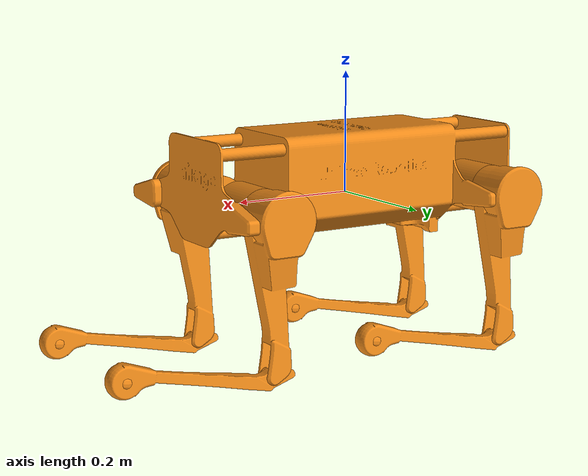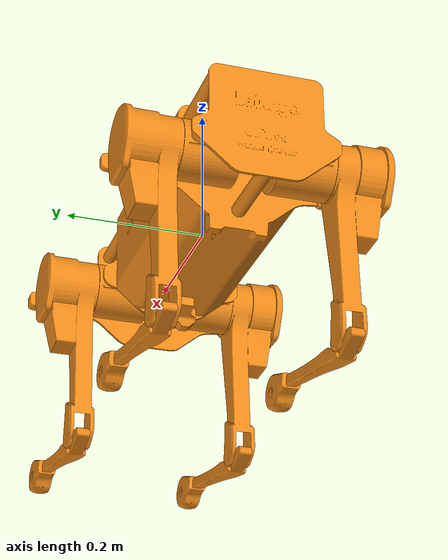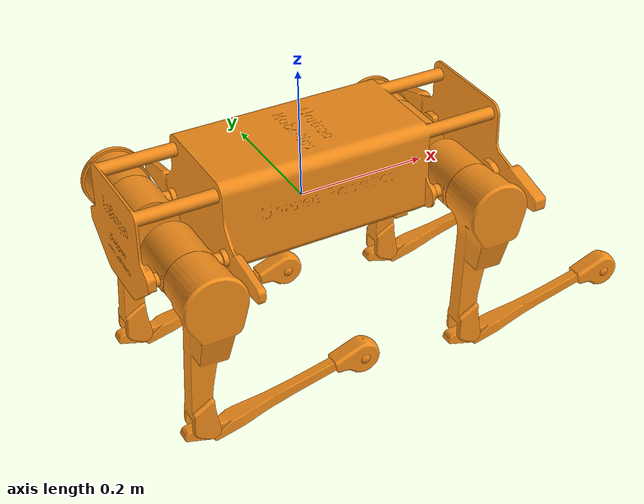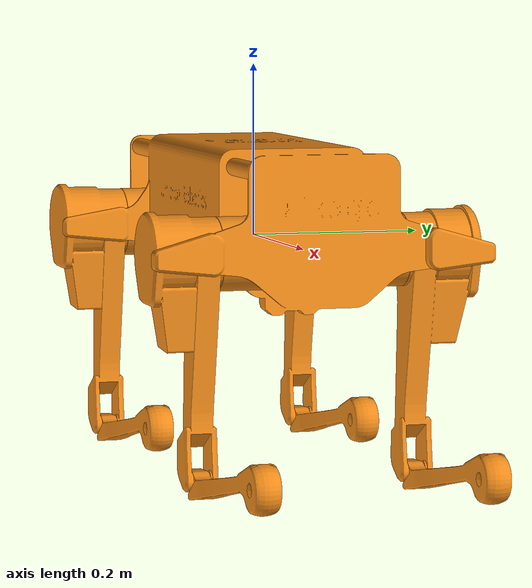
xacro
<?xml version="1.0"?>

<robot name="laikago" xmlns:xacro="http://www.ros.org/wiki/xacro">

    <xacro:arg name="DEBUG" default="false"/>

    <xacro:include filename="$(find laikago_description)/xacro/const.xacro"/>
    <xacro:include filename="$(find laikago_description)/xacro/materials.xacro"/>
    <xacro:include filename="$(find laikago_description)/xacro/leg.xacro"/>
    <xacro:include filename="$(find laikago_description)/xacro/gazebo.xacro"/>

    <!-- Rollover Protection mode will add an additional stick on the top, use "true" or "false" to switch it. -->
    <xacro:property name="rolloverProtection" value="false"/>

    <!-- Debug mode will hung up the robot, use "true" or "false" to switch it. -->
    <xacro:if value="$(arg DEBUG)">
        <link name="world"/>
        <joint name="base_static_joint" type="fixed">
            <origin rpy="0 0 0" xyz="0 0 0"/>
            <parent link="world"/>
            <child link="base"/>
        </joint>
    </xacro:if>

    <link name="base">
        <visual>
            <origin rpy="0 0 0" xyz="0 0 0"/>
            <geometry>
                <box size="0.001 0.001 0.001"/>
            </geometry>
        </visual>
    </link>

    <joint name="floating_base" type="fixed">
        <origin rpy="0 0 0" xyz="0 0 0"/>
        <parent link="base"/>
        <child link="trunk"/>
    </joint>

    <link name="trunk">
        <visual>
            <origin rpy="0 0 0" xyz="0 0 0"/>
            <geometry>
                <mesh filename="package://laikago_description/meshes/trunk.dae" scale="1 1 1"/>
            </geometry>
            <material name="orange"/>
        </visual>
        <collision>
            <origin rpy="0 0 0" xyz="0 0 ${trunk_offset_z}"/>
            <geometry>
                <box size="${trunk_length} ${trunk_width} ${trunk_height}"/>
            </geometry>
        </collision>
        <inertial>
            <origin rpy="0 0 0" xyz="${trunk_com_x} ${trunk_com_y} ${trunk_com_z}"/>
            <mass value="${trunk_mass}"/>
            <inertia
                ixx="${trunk_ixx}" ixy="${trunk_ixy}" ixz="${trunk_ixz}"
                iyy="${trunk_iyy}" iyz="${trunk_iyz}"
                izz="${trunk_izz}"/>
        </inertial>
    </link>

    <xacro:if value="${(rolloverProtection == 'true')}">
        <joint name="stick_joint" type="fixed">
            <parent link="trunk"/>
            <child link="stick_link"/>
            <origin rpy="0 0 0" xyz="${0.18} 0 ${stick_length/2.0+0.08}"/>
        </joint>

        <link name="stick_link">
            <visual>
                <geometry>
                    <cylinder length="${stick_length}" radius="${stick_radius}"/>
                </geometry>
                <origin rpy="0 0 0" xyz="0 0 0"/>
                <material name="white"/>
            </visual>
            <collision>
                <geometry>
                    <cylinder length="${stick_length}" radius="${stick_radius}"/>
                </geometry>
                <origin rpy="0 0 0" xyz="0 0 0"/>
            </collision>
            <inertial>
                <mass value="${stick_mass}"/>
                <inertia
                    ixx="${stick_mass / 2.0 * (stick_radius*stick_radius)}" ixy="0.0" ixz="0.0"
                    iyy="${stick_mass / 12.0 * (3*stick_radius*stick_radius + stick_length*stick_length)}" iyz="0.0"
                    izz="${stick_mass / 12.0 * (3*stick_radius*stick_radius + stick_length*stick_length)}"/>
            </inertial>
        </link>
    </xacro:if>

    <joint name="imu_joint" type="fixed">
        <parent link="trunk"/>
        <child link="imu_link"/>
        <origin rpy="0 0 0" xyz="0 0 0"/>
    </joint>

    <link name="imu_link">
        <inertial>
            <mass value="0.001"/>
            <origin rpy="0 0 0" xyz="0 0 0"/>
            <inertia ixx="0.0001" ixy="0" ixz="0" iyy="0.0001" iyz="0" izz="0.0001"/>
        </inertial>
        <visual>
            <origin rpy="0 0 0" xyz="0 0 0"/>
            <geometry>
                <box size="0.001 0.001 0.001"/>
            </geometry>
            <material name="red"/>
        </visual>
        <collision>
            <origin rpy="0 0 0" xyz="0 0 0"/>
            <geometry>
                <box size=".001 .001 .001"/>
            </geometry>
        </collision>
    </link>
    <xacro:leg name="FR" mirror="-1" mirror_dae="False" front_hind="1" front_hind_dae="True">
        <origin rpy="0 0 0" xyz="${leg_offset_x} ${-leg_offset_y} 0"/>
    </xacro:leg>

    <xacro:leg name="FL" mirror="1" mirror_dae="True" front_hind="1" front_hind_dae="True">
        <origin rpy="0 0 0" xyz="${leg_offset_x} ${leg_offset_y} 0"/>
    </xacro:leg>

    <xacro:leg name="RR" mirror="-1" mirror_dae="False" front_hind="-1" front_hind_dae="False">
        <origin rpy="0 0 0" xyz="${-leg_offset_x} ${-leg_offset_y} 0"/>
    </xacro:leg>

    <xacro:leg name="RL" mirror="1" mirror_dae="True" front_hind="-1" front_hind_dae="False">
        <origin rpy="0 0 0" xyz="${-leg_offset_x} ${leg_offset_y} 0"/>
    </xacro:leg>

</robot>

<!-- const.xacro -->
<robot xmlns:xacro="http://www.ros.org/wiki/xacro">

    <!-- Constants for robot dimensions -->
    <xacro:property name="PI" value="3.1415926535897931"/>
    <xacro:property name="stick_mass" value="0.00001"/>

    <!-- simplified collision value -->
    <xacro:property name="trunk_width" value="0.172"/>
    <xacro:property name="trunk_length" value="0.5616"/>
    <xacro:property name="trunk_height" value="0.1875"/>
    <xacro:property name="hip_radius" value="0.041"/>
    <xacro:property name="hip_length" value="0.08"/>
    <xacro:property name="thigh_shoulder_radius" value="0.044"/>
    <xacro:property name="thigh_shoulder_length" value="0.08"/>
    <xacro:property name="thigh_width" value="0.034"/>
    <xacro:property name="thigh_height" value="0.043"/>
    <xacro:property name="calf_width" value="0.016"/>
    <xacro:property name="calf_height" value="0.016"/>
    <xacro:property name="foot_radius" value="0.0265"/>
    <xacro:property name="stick_radius" value="0.01"/>
    <xacro:property name="stick_length" value="0.2"/>

    <!-- kinematic value -->
    <xacro:property name="thigh_offset" value="0.037"/>
    <xacro:property name="thigh_length" value="0.25"/>
    <xacro:property name="calf_length" value="0.25"/>

    <!-- leg offset from trunk center value -->
    <xacro:property name="leg_offset_x" value="0.21935"/>
    <xacro:property name="leg_offset_y" value="0.0875"/>
    <xacro:property name="trunk_offset_z" value="0.01675"/>
    <xacro:property name="hip_offset" value="0.019"/>

    <!-- joint limits -->
    <xacro:property name="damping" value="0"/>
    <xacro:property name="friction" value="0"/>
    <xacro:property name="hip_max" value="60"/>
    <xacro:property name="hip_min" value="-50"/>
    <xacro:property name="hip_velocity_max" value="27"/>
    <xacro:property name="hip_torque_max" value="18.954"/>
    <xacro:property name="thigh_max" value="225"/>
    <xacro:property name="thigh_min" value="-30"/>
    <xacro:property name="thigh_velocity_max" value="12.794"/>
    <xacro:property name="thigh_torque_max" value="40"/>
    <xacro:property name="calf_max" value="-35"/>
    <xacro:property name="calf_min" value="-159"/>
    <xacro:property name="calf_velocity_max" value="12.794"/>
    <xacro:property name="calf_torque_max" value="40"/>

    <!-- dynamics inertial value -->
    <!-- trunk -->
    <xacro:property name="trunk_mass" value="13.733"/>
    <xacro:property name="trunk_com_x" value="0.002284"/>
    <xacro:property name="trunk_com_y" value="-0.000041"/>
    <xacro:property name="trunk_com_z" value="0.025165"/>
    <xacro:property name="trunk_ixx" value="0.073348887"/>
    <xacro:property name="trunk_ixy" value="0.00030338"/>
    <xacro:property name="trunk_ixz" value="0.001918218"/>
    <xacro:property name="trunk_iyy" value="0.250684593"/>
    <xacro:property name="trunk_iyz" value="-0.000075402"/>
    <xacro:property name="trunk_izz" value="0.254469458"/>

    <!-- hip (left front) -->
    <xacro:property name="hip_mass" value="1.096"/>
    <xacro:property name="hip_com_x" value="-0.001568"/>
    <xacro:property name="hip_com_y" value="-0.008134"/>
    <xacro:property name="hip_com_z" value="0.000864"/>
    <xacro:property name="hip_ixx" value="0.000822113"/>
    <xacro:property name="hip_ixy" value="-0.000004982"/>
    <xacro:property name="hip_ixz" value="-0.00003672"/>
    <xacro:property name="hip_iyy" value="0.000983196"/>
    <xacro:property name="hip_iyz" value="0.000002811"/>
    <xacro:property name="hip_izz" value="0.000864753"/>

    <!-- thigh -->
    <xacro:property name="thigh_mass" value="1.528"/>
    <xacro:property name="thigh_com_x" value="-0.000482"/>
    <xacro:property name="thigh_com_y" value="0.02001"/>
    <xacro:property name="thigh_com_z" value="-0.031996"/>
    <xacro:property name="thigh_ixx" value="0.00991611"/>
    <xacro:property name="thigh_ixy" value="0.000010388"/>
    <xacro:property name="thigh_ixz" value="0.000250428"/>
    <xacro:property name="thigh_iyy" value="0.009280083"/>
    <xacro:property name="thigh_iyz" value="-0.00008511"/>
    <xacro:property name="thigh_izz" value="0.00178256"/>

    <!-- calf -->
    <xacro:property name="calf_mass" value="0.241"/>
    <xacro:property name="calf_com_x" value="-0.002196"/>
    <xacro:property name="calf_com_y" value="-0.000381"/>
    <xacro:property name="calf_com_z" value="-0.12338"/>
    <xacro:property name="calf_ixx" value="0.006181961"/>
    <xacro:property name="calf_ixy" value="0.000000237"/>
    <xacro:property name="calf_ixz" value="-0.000002985"/>
    <xacro:property name="calf_iyy" value="0.006196546"/>
    <xacro:property name="calf_iyz" value="0.000005138"/>
    <xacro:property name="calf_izz" value="0.000034774"/>

    <!-- foot -->
    <xacro:property name="foot_mass" value="0.06"/>

</robot>

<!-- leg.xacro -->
<robot xmlns:xacro="http://www.ros.org/wiki/xacro">

    <xacro:include filename="$(find laikago_description)/xacro/transmission.xacro"/>

    <xacro:macro name="leg" params="name mirror mirror_dae front_hind front_hind_dae *origin">

        <joint name="${name}_hip_joint" type="revolute">
            <xacro:insert_block name="origin"/>
            <parent link="trunk"/>
            <child link="${name}_hip"/>
            <axis xyz="1 0 0"/>
            <dynamics damping="${damping}" friction="${friction}"/>
            <xacro:if value="${(mirror_dae == True)}">
                <limit effort="${hip_torque_max}" velocity="${hip_velocity_max}" lower="${hip_min*PI/180.0}" upper="${hip_max*PI/180.0}"/>
            </xacro:if>
            <xacro:if value="${(mirror_dae == False)}">
                <limit effort="${hip_torque_max}" velocity="${hip_velocity_max}" lower="${-hip_max*PI/180.0}" upper="${-hip_min*PI/180.0}"/>
            </xacro:if>
        </joint>

        <link name="${name}_hip">
            <visual>
                <xacro:if value="${(mirror_dae == True) and (front_hind_dae == True)}">
                    <origin rpy="0 0 0" xyz="0 0 0"/>
                </xacro:if>
                <xacro:if value="${(mirror_dae == False) and (front_hind_dae == True)}">
                    <origin rpy="${PI} 0 0" xyz="0 0 0"/>
                </xacro:if>
                <xacro:if value="${(mirror_dae == True) and (front_hind_dae == False)}">
                    <origin rpy="0 ${PI} 0" xyz="0 0 0"/>
                </xacro:if>
                <xacro:if value="${(mirror_dae == False) and (front_hind_dae == False)}">
                    <origin rpy="${PI} ${PI} 0" xyz="0 0 0"/>
                </xacro:if>
                <geometry>
                    <mesh filename="package://laikago_description/meshes/hip.dae" scale="1 1 1"/>
                </geometry>
                <material name="orange"/>
            </visual>
            <collision>
                <origin rpy="${PI/2.0} 0 0" xyz="0 ${-(hip_length/2.0-hip_offset)*mirror} 0"/>
                <geometry>
                    <cylinder length="${hip_length}" radius="${hip_radius}"/>
                </geometry>
            </collision>
            <inertial>
                <origin rpy="0 0 0" xyz="${hip_com_x*front_hind} ${hip_com_y*mirror} ${hip_com_z}"/>
                <mass value="${hip_mass}"/>
                <inertia
                    ixx="${hip_ixx}" ixy="${hip_ixy*mirror*front_hind}" ixz="${hip_ixz*front_hind}"
                    iyy="${hip_iyy}" iyz="${hip_iyz*mirror}"
                    izz="${hip_izz}"/>
            </inertial>
        </link>

        <joint name="${name}_hip_fixed" type="fixed">
            <origin rpy="0 0 0" xyz="0 ${(thigh_shoulder_length/2.0+hip_offset)*mirror} 0"/>
            <parent link="${name}_hip"/>
            <child link="${name}_thigh_shoulder"/>
        </joint>

        <!-- this link is only for collision -->
        <link name="${name}_thigh_shoulder">
            <collision>
                <origin rpy="${PI/2.0} 0 0" xyz="0 0 0"/>
                <geometry>
                    <cylinder length="${thigh_shoulder_length}" radius="${thigh_shoulder_radius}"/>
                </geometry>
            </collision>
        </link>

        <joint name="${name}_thigh_joint" type="revolute">
            <origin rpy="0 0 0" xyz="0 ${thigh_offset*mirror} 0"/>
            <parent link="${name}_hip"/>
            <child link="${name}_thigh"/>
            <axis xyz="0 1 0"/>
            <dynamics damping="${damping}" friction="${friction}"/>
            <limit effort="${thigh_torque_max}" velocity="${thigh_velocity_max}" lower="${thigh_min*PI/180.0}" upper="${thigh_max*PI/180.0}"/>
        </joint>

        <link name="${name}_thigh">
            <visual>
                <origin rpy="0 0 0" xyz="0 0 0"/>
                <geometry>
                    <xacro:if value="${mirror_dae == True}">
                        <mesh filename="package://laikago_description/meshes/thigh.dae" scale="1 1 1"/>
                    </xacro:if>
                    <xacro:if value="${mirror_dae == False}">
                        <mesh filename="package://laikago_description/meshes/thigh_mirror.dae" scale="1 1 1"/>
                    </xacro:if>
                </geometry>
                <material name="orange"/>
            </visual>
            <collision>
                <origin rpy="0 ${PI/2.0} 0" xyz="0 0 ${-thigh_length/2.0}"/>
                <geometry>
                    <box size="${thigh_length} ${thigh_width} ${thigh_height}"/>
                </geometry>
            </collision>
            <inertial>
                <origin rpy="0 0 0" xyz="${thigh_com_x} ${thigh_com_y*mirror} ${thigh_com_z}"/>
                <mass value="${thigh_mass}"/>
                <inertia
                    ixx="${thigh_ixx}" ixy="${thigh_ixy*mirror}" ixz="${thigh_ixz}"
                    iyy="${thigh_iyy}" iyz="${thigh_iyz*mirror}"
                    izz="${thigh_izz}"/>
            </inertial>
        </link>

        <joint name="${name}_calf_joint" type="revolute">
            <origin rpy="0 0 0" xyz="0 0 ${-thigh_length}"/>
            <parent link="${name}_thigh"/>
            <child link="${name}_calf"/>
            <axis xyz="0 1 0"/>
            <dynamics damping="${damping}" friction="${friction}"/>
            <limit effort="${calf_torque_max}" velocity="${calf_velocity_max}" lower="${calf_min*PI/180.0}" upper="${calf_max*PI/180.0}"/>
        </joint>

        <link name="${name}_calf">
            <visual>
                <origin rpy="0 0 0" xyz="0 0 0"/>
                <geometry>
                    <mesh filename="package://laikago_description/meshes/calf.dae" scale="1 1 1"/>
                </geometry>
                <material name="orange"/>
            </visual>
            <collision>
                <origin rpy="0 ${PI/2.0} 0" xyz="0 0 ${-calf_length/2.0}"/>
                <geometry>
                    <box size="${calf_length} ${calf_width} ${calf_height}"/>
                </geometry>
            </collision>
            <inertial>
                <origin rpy="0 0 0" xyz="${calf_com_x} ${calf_com_y} ${calf_com_z}"/>
                <mass value="${calf_mass}"/>
                <inertia
                    ixx="${calf_ixx}" ixy="${calf_ixy}" ixz="${calf_ixz}"
                    iyy="${calf_iyy}" iyz="${calf_iyz}"
                    izz="${calf_izz}"/>
            </inertial>
        </link>

        <joint name="${name}_foot_fixed" type="fixed">
            <origin rpy="0 0 0" xyz="0 0 ${-(calf_length)}"/>
            <parent link="${name}_calf"/>
            <child link="${name}_foot"/>
        </joint>

        <link name="${name}_foot">
            <visual>
                <origin rpy="0 0 0" xyz="0 0 0"/>
                <geometry>
                    <sphere radius="${foot_radius-0.01}"/>
                </geometry>
                <material name="orange"/>
            </visual>
            <collision>
                <origin rpy="0 0 0" xyz="0 0 0"/>
                <geometry>
                    <sphere radius="${foot_radius}"/>
                </geometry>
            </collision>
            <inertial>
                <mass value="${foot_mass}"/>
                <inertia
                    ixx="${(2*foot_mass)/5.0*(foot_radius*foot_radius)}" ixy="0.0" ixz="0.0"
                    iyy="${(2*foot_mass)/5.0*(foot_radius*foot_radius)}" iyz="0.0"
                    izz="${(2*foot_mass)/5.0*(foot_radius*foot_radius)}"/>
            </inertial>
        </link>

        <xacro:leg_transmission name="${name}"/>
    </xacro:macro>
</robot>
